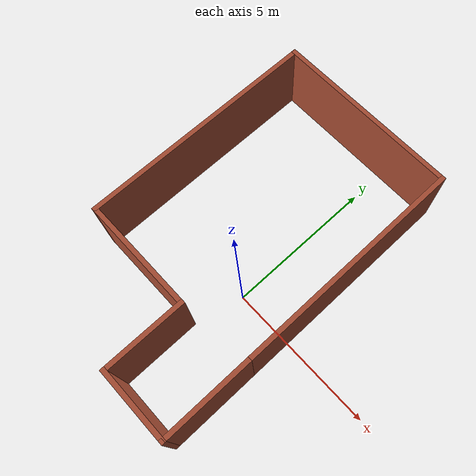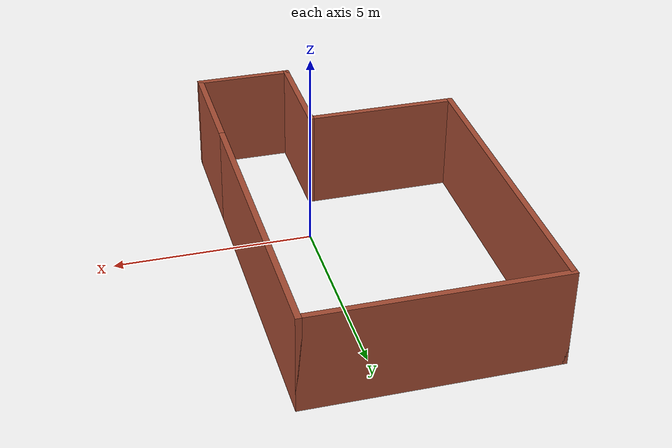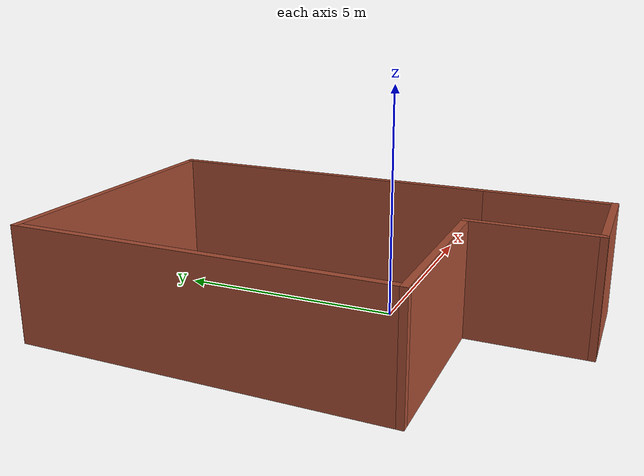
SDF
<?xml version='1.0'?>
<sdf version='1.6'>
  <model name='indoor1'>
    <pose frame=''>-1.15 0.955 0 0 -0 0</pose>
    <link name='Wall_0'>
      <collision name='Wall_0_Collision'>
        <geometry>
          <box>
            <size>3.75 0.15 2.5</size>
          </box>
        </geometry>
        <pose frame=''>0 0 1.25 0 -0 0</pose>
      </collision>
      <visual name='Wall_0_Visual'>
        <pose frame=''>0 0 1.25 0 -0 0</pose>
        <geometry>
          <box>
            <size>3.75 0.15 2.5</size>
          </box>
        </geometry>
        <material>
          <script>
            <uri>file://media/materials/scripts/gazebo.material</uri>
            <name>Gazebo/Bricks</name>
          </script>
          <ambient>1 1 1 1</ambient>
        </material>
      </visual>
      <pose frame=''>-1.25 -2.625 0 0 -0 3.14159</pose>
    </link>
    <link name='Wall_1'>
      <collision name='Wall_1_Collision'>
        <geometry>
          <box>
            <size>8 0.15 2.5</size>
          </box>
        </geometry>
        <pose frame=''>0 0 1.25 0 -0 0</pose>
      </collision>
      <visual name='Wall_1_Visual'>
        <pose frame=''>0 0 1.25 0 -0 0</pose>
        <geometry>
          <box>
            <size>8 0.15 2.5</size>
          </box>
        </geometry>
        <material>
          <script>
            <uri>file://media/materials/scripts/gazebo.material</uri>
            <name>Gazebo/Bricks</name>
          </script>
          <ambient>1 1 1 1</ambient>
        </material>
      </visual>
      <pose frame=''>-3.05 1.3 0 0 -0 1.5708</pose>
    </link>
    <link name='Wall_2'>
      <collision name='Wall_2_Collision'>
        <geometry>
          <box>
            <size>6.25 0.15 2.5</size>
          </box>
        </geometry>
        <pose frame=''>0 0 1.25 0 -0 0</pose>
      </collision>
      <visual name='Wall_2_Visual'>
        <pose frame=''>0 0 1.25 0 -0 0</pose>
        <geometry>
          <box>
            <size>6.25 0.15 2.5</size>
          </box>
        </geometry>
        <material>
          <script>
            <uri>file://media/materials/scripts/gazebo.material</uri>
            <name>Gazebo/Bricks</name>
          </script>
          <ambient>1 1 1 1</ambient>
        </material>
      </visual>
      <pose frame=''>0 5.225 0 0 -0 0</pose>
    </link>
    <link name='Wall_3'>
      <collision name='Wall_3_Collision'>
        <geometry>
          <box>
            <size>7.75 0.15 2.5</size>
          </box>
        </geometry>
        <pose frame=''>0 0 1.25 0 -0 0</pose>
      </collision>
      <visual name='Wall_3_Visual'>
        <pose frame=''>0 0 1.25 0 -0 0</pose>
        <geometry>
          <box>
            <size>7.75 0.15 2.5</size>
          </box>
        </geometry>
        <material>
          <script>
            <uri>file://media/materials/scripts/gazebo.material</uri>
            <name>Gazebo/Bricks</name>
          </script>
          <ambient>1 1 1 1</ambient>
        </material>
      </visual>
      <pose frame=''>3.05 1.425 0 0 0 -1.5708</pose>
    </link>
    <link name='Wall_4'>
      <collision name='Wall_4_Collision'>
        <geometry>
          <box>
            <size>3 0.15 2.5</size>
          </box>
        </geometry>
        <pose frame=''>0 0 1.25 0 -0 0</pose>
      </collision>
      <visual name='Wall_4_Visual'>
        <pose frame=''>0 0 1.25 0 -0 0</pose>
        <geometry>
          <box>
            <size>3 0.15 2.5</size>
          </box>
        </geometry>
        <material>
          <script>
            <uri>file://media/materials/scripts/gazebo.material</uri>
            <name>Gazebo/Bricks</name>
          </script>
          <ambient>1 1 1 1</ambient>
        </material>
      </visual>
      <pose frame=''>3.05 -3.8 0 0 0 -1.5708</pose>
    </link>
    <link name='Wall_5'>
      <collision name='Wall_5_Collision'>
        <geometry>
          <box>
            <size>2.5 0.15 2.5</size>
          </box>
        </geometry>
        <pose frame=''>0 0 1.25 0 -0 0</pose>
      </collision>
      <visual name='Wall_5_Visual'>
        <pose frame=''>0 0 1.25 0 -0 0</pose>
        <geometry>
          <box>
            <size>2.5 0.15 2.5</size>
          </box>
        </geometry>
        <material>
          <script>
            <uri>file://media/materials/scripts/gazebo.material</uri>
            <name>Gazebo/Bricks</name>
          </script>
          <ambient>1 1 1 1</ambient>
        </material>
      </visual>
      <pose frame=''>1.875 -5.225 0 0 -0 3.14159</pose>
    </link>
    <link name='Wall_6'>
      <collision name='Wall_6_Collision'>
        <geometry>
          <box>
            <size>2.75 0.15 2.5</size>
          </box>
        </geometry>
        <pose frame=''>0 0 1.25 0 -0 0</pose>
      </collision>
      <visual name='Wall_6_Visual'>
        <pose frame=''>0 0 1.25 0 -0 0</pose>
        <geometry>
          <box>
            <size>2.75 0.15 2.5</size>
          </box>
        </geometry>
        <material>
          <script>
            <uri>file://media/materials/scripts/gazebo.material</uri>
            <name>Gazebo/Bricks</name>
          </script>
          <ambient>1 1 1 1</ambient>
        </material>
      </visual>
      <pose frame=''>0.7 -3.925 0 0 -0 1.5708</pose>
    </link>
    <static>1</static>
  </model>
</sdf>
